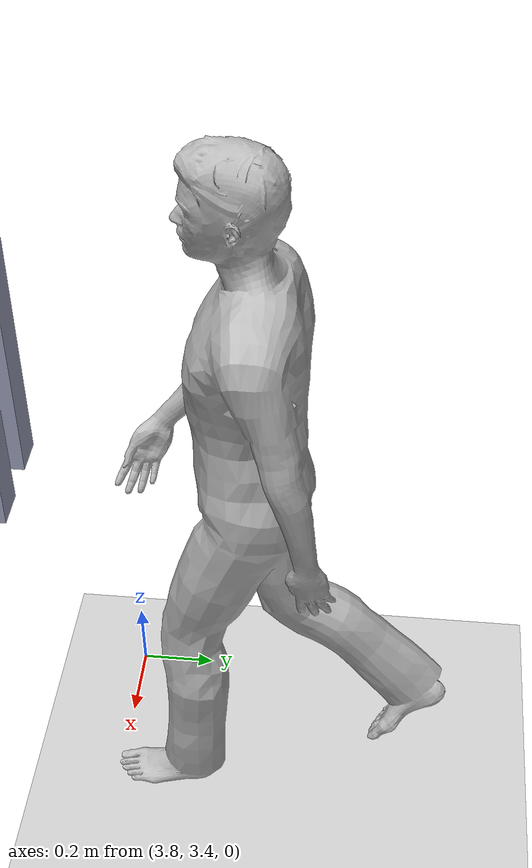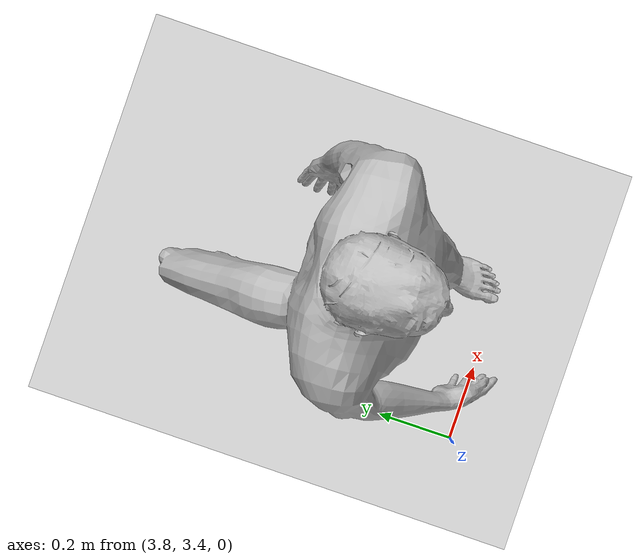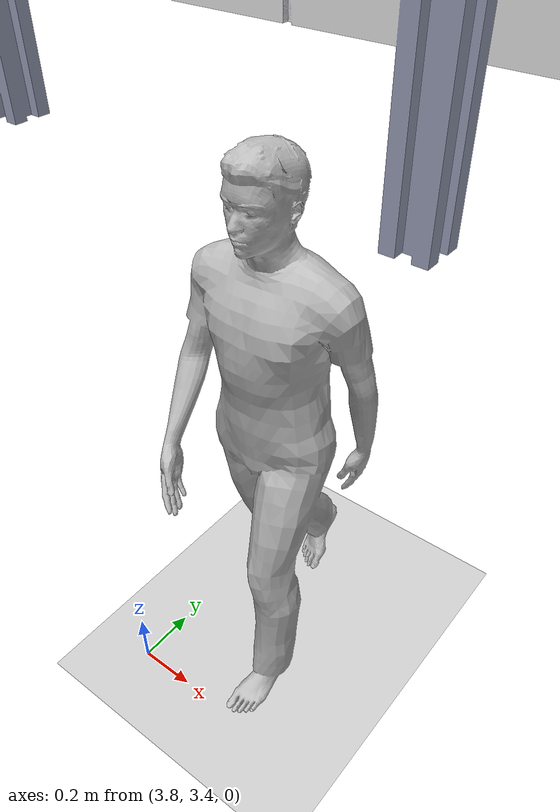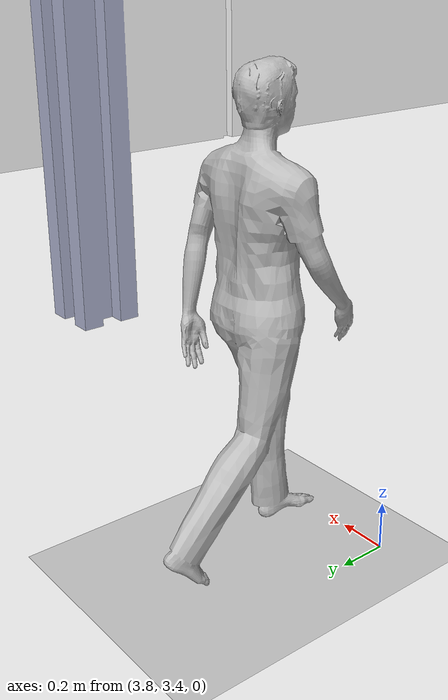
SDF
<sdf version="1.6">
 <world name="default">
  <model name="robot field">
   <static>1</static>
   <link name="link">
    <collision name="collision">
     <geometry><mesh><uri>model://robot_field/meshes/model.dae</uri><scale>0 0 0</scale></mesh></geometry>
    </collision>
    <visual name="visual">
     <geometry><mesh><uri>model://robot_field/meshes/model.dae</uri><scale>15 15 30</scale></mesh></geometry>
    </visual>
   </link>
   <pose>0 0 -1 0 -0 0</pose>
  </model>
  <model name="ground_plane">
   <static>1</static>
   <link name="link">
    <collision name="collision">
     <geometry><plane><normal>0 0 1</normal><size>100 100</size></plane></geometry>
     <surface><friction><ode><mu>100</mu><mu2>50</mu2></ode></friction></surface>
    </collision>
    <visual name="visual">
     <cast_shadows>0</cast_shadows>
     <geometry><plane><normal>0 0 1</normal><size>100 100</size></plane></geometry>
     <material>
      <script><uri>file://media/materials/scripts/gazebo.material</uri><name>Gazebo/Grey</name></script>
     </material>
    </visual>
   </link>
  </model>
  <light name="sun" type="directional">
   <pose>0 0 10 0 -0 0</pose>
   <diffuse>0.8 0.8 0.8 1</diffuse>
   <specular>0.2 0.2 0.2 1</specular>
   <attenuation>
    <range>1000</range>
    <constant>0.9</constant>
    <linear>0.01</linear>
    <quadratic>0.001</quadratic>
   </attenuation>
   <direction>0 0.5 -0.9</direction>
  </light>
  <gravity>0 0 -9.8</gravity>
  <magnetic_field>6e-06 2.3e-05 -4.2e-05</magnetic_field>
  <atmosphere type="adiabatic"/>
  <physics name="default_physics" default="0" type="ode">
   <max_step_size>0.001</max_step_size>
   <real_time_factor>1</real_time_factor>
   <real_time_update_rate>1000</real_time_update_rate>
  </physics>
  <scene><ambient>0.4 0.4 0.4 1</ambient><background>0.7 0.7 0.7 1</background><shadows>1</shadows></scene>
  <spherical_coordinates>
   <surface_model>EARTH_WGS84</surface_model>
   <latitude_deg>0</latitude_deg>
   <longitude_deg>0</longitude_deg>
   <elevation>0</elevation>
   <heading_deg>0</heading_deg>
  </spherical_coordinates>
  <include>
   <name>person_walking1</name>
   <pose>4.11701 3.80613 0.02 0 -0 0</pose>
   <uri>model://person_walking_fixed</uri>
  </include>
  <include>
   <name>person_walking2</name>
   <pose>4.11701 3.80613 0.02 0 -0 0</pose>
   <uri>model://person_walking_fixed</uri>
  </include>
  <include>
   <name>person_walking3</name>
   <pose>4.11701 3.80613 0.02 0 -0 0</pose>
   <uri>model://person_walking_fixed</uri>
  </include>
  <include>
   <name>person_walking4</name>
   <pose>4.11701 3.80613 0.02 0 -0 0</pose>
   <uri>model://person_walking_fixed</uri>
  </include>
  <include>
   <name>person_walking5</name>
   <pose>4.11701 3.80613 0.02 0 -0 0</pose>
   <uri>model://person_walking_fixed</uri>
  </include>
  <include>
   <name>person_walking6</name>
   <pose>4.11701 3.80613 0.02 0 -0 0</pose>
   <uri>model://person_walking_fixed</uri>
  </include>
  <include>
   <name>person_walking7</name>
   <pose>4.11701 3.80613 0.02 0 -0 0</pose>
   <uri>model://person_walking_fixed</uri>
  </include>
  <include>
   <name>person_walking8</name>
   <pose>4.11701 3.80613 0.02 0 -0 0</pose>
   <uri>model://person_walking_fixed</uri>
  </include>
  <physics type="ode">
   <max_step_size>0.005</max_step_size>
   <real_time_factor>1</real_time_factor>
   <real_time_update_rate>200</real_time_update_rate>
  </physics>
 </world>
</sdf>

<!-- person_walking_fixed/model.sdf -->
<sdf version="1.5">
  <model name="person_walking">
    <link name="link">
      <inertial>
        <pose>0 0 0.95 0 0 0</pose>
        <mass>80.0</mass>
        <inertia>
          <ixx>27.82</ixx>
          <ixy>0</ixy>
          <ixz>0</ixz>
          <iyy>24.88</iyy>
          <iyz>0</iyz>
          <izz>4.57</izz>
        </inertia>
      </inertial>

      <visual name="visual">
        <pose>0 0 -0.02 0 0 0</pose>
        <geometry>
          <mesh>
            <uri>model://person_walking/meshes/walking.dae</uri>
          </mesh>
        </geometry>
      </visual>
      <self_collide>0</self_collide>
      <kinematic>0</kinematic>
      <gravity>0</gravity>
    </link>
  </model>
</sdf>
